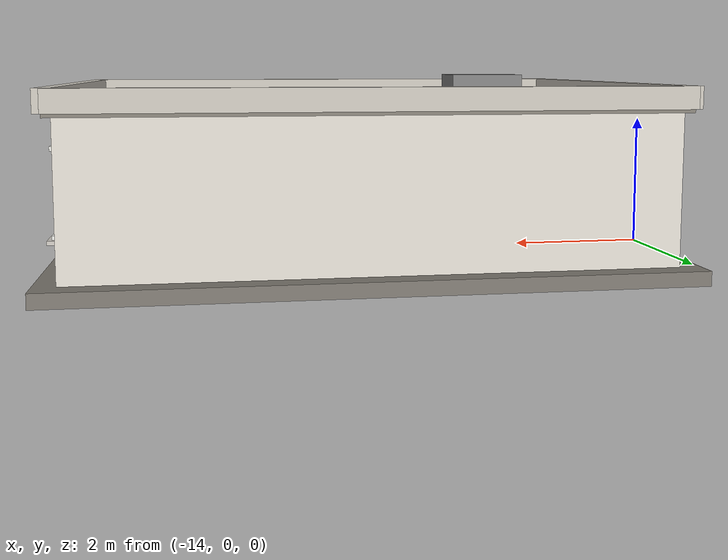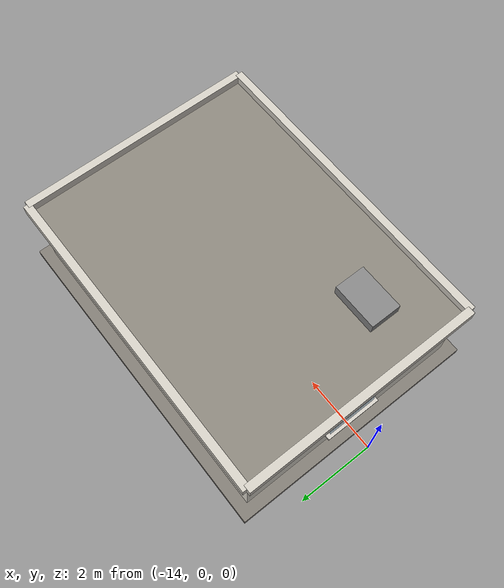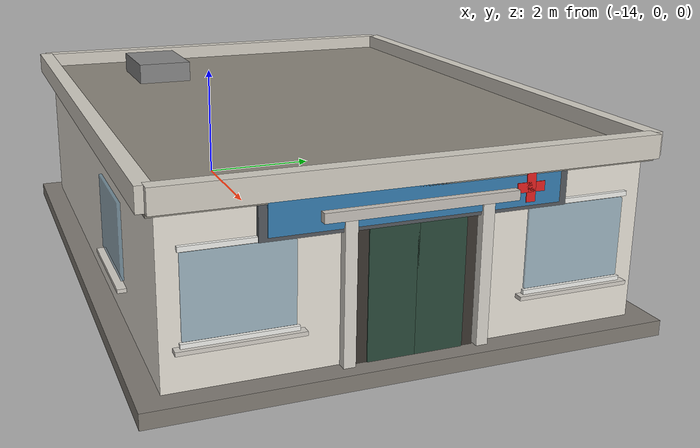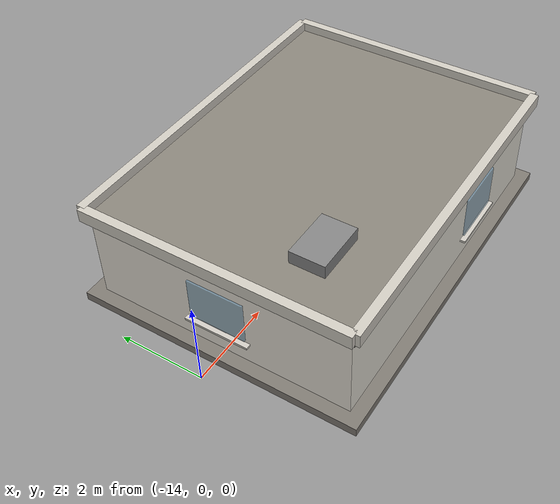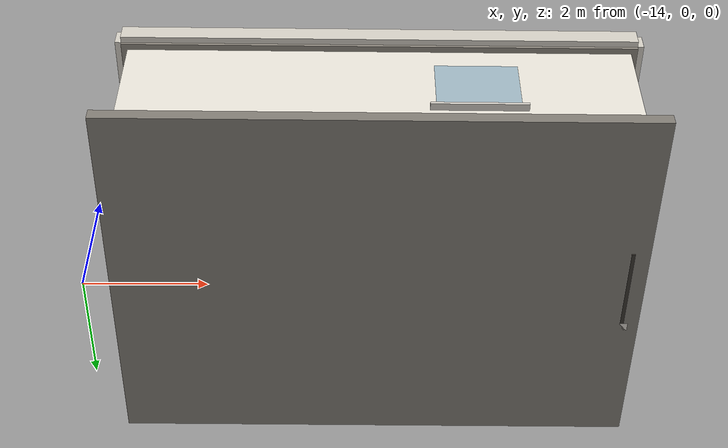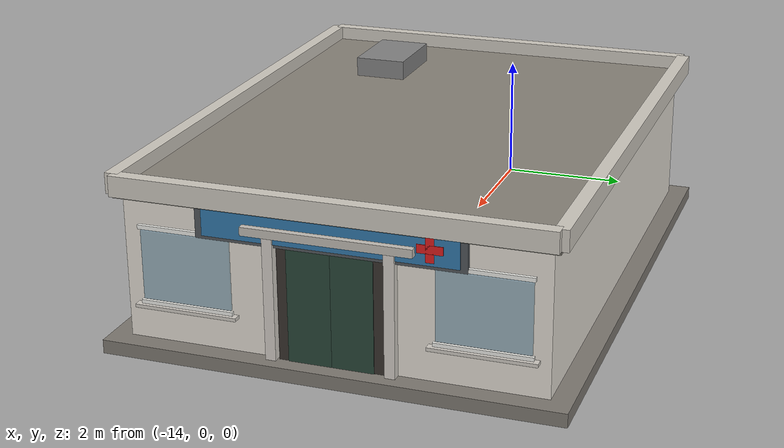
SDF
<?xml version="1.0" ?>
<sdf version="1.9">
    <model name="community_clinic">
        <static>true</static>
        <pose>-9.2829546085708738 0.030199950127691721 0 0 0 0</pose>
        <link name="clinic_link">
            <visual name="foundation_visual">
                <pose>0 0 0.1 0 0 0</pose>
                <geometry>
                    <box>
                        <size>8.6 6.6 0.2</size>
                    </box>
                </geometry>
                <material>
                    <ambient>0.45 0.43 0.40 1</ambient>
                    <diffuse>0.50 0.48 0.45 1</diffuse>
                    <specular>0.05 0.05 0.05 1</specular>
                </material>
            </visual>
            <collision name="foundation_collision">
                <pose>0 0 0.1 0 0 0</pose>
                <geometry>
                    <box>
                        <size>8.6 6.6 0.2</size>
                    </box>
                </geometry>
            </collision>
            <visual name="building_visual">
                <pose>0 0 1.2 0 0 0</pose>
                <geometry>
                    <box>
                        <size>8.0 6.0 2.2</size>
                    </box>
                </geometry>
                <material>
                    <ambient>0.88 0.86 0.82 1</ambient>
                    <diffuse>0.90 0.88 0.84 1</diffuse>
                    <specular>0.04 0.04 0.04 1</specular>
                </material>
            </visual>
            <collision name="building_collision">
                <pose>0 0 1.2 0 0 0</pose>
                <geometry>
                    <box>
                        <size>8.0 6.0 2.2</size>
                    </box>
                </geometry>
            </collision>
            <visual name="parapet_front">
                <pose>0 3.1 2.45 0 0 0</pose>
                <geometry>
                    <box>
                        <size>8.2 0.2 0.3</size>
                    </box>
                </geometry>
                <material>
                    <ambient>0.80 0.78 0.74 1</ambient>
                    <diffuse>0.82 0.80 0.76 1</diffuse>
                </material>
            </visual>
            <visual name="parapet_back">
                <pose>0 -3.1 2.45 0 0 0</pose>
                <geometry>
                    <box>
                        <size>8.2 0.2 0.3</size>
                    </box>
                </geometry>
                <material>
                    <ambient>0.80 0.78 0.74 1</ambient>
                    <diffuse>0.82 0.80 0.76 1</diffuse>
                </material>
            </visual>
            <visual name="parapet_left">
                <pose>-4.1 0 2.45 0 0 0</pose>
                <geometry>
                    <box>
                        <size>0.2 6.2 0.3</size>
                    </box>
                </geometry>
                <material>
                    <ambient>0.80 0.78 0.74 1</ambient>
                    <diffuse>0.82 0.80 0.76 1</diffuse>
                </material>
            </visual>
            <visual name="parapet_right">
                <pose>4.1 0 2.45 0 0 0</pose>
                <geometry>
                    <box>
                        <size>0.2 6.2 0.3</size>
                    </box>
                </geometry>
                <material>
                    <ambient>0.80 0.78 0.74 1</ambient>
                    <diffuse>0.82 0.80 0.76 1</diffuse>
                </material>
            </visual>
            <visual name="roof_slab">
                <pose>0 0 2.32 0 0 0</pose>
                <geometry>
                    <box>
                        <size>8.2 6.2 0.14</size>
                    </box>
                </geometry>
                <material>
                    <ambient>0.52 0.50 0.46 1</ambient>
                    <diffuse>0.54 0.52 0.48 1</diffuse>
                </material>
            </visual>
            <visual name="canopy_slab">
                <pose>3.6 0 2.05 0 0 0</pose>
                <geometry>
                    <box>
                        <size>1.2 2.4 0.12</size>
                    </box>
                </geometry>
                <material>
                    <ambient>0.75 0.73 0.70 1</ambient>
                    <diffuse>0.77 0.75 0.72 1</diffuse>
                </material>
            </visual>
            <visual name="canopy_pillar_left">
                <pose>4.05 0.85 1.05 0 0 0</pose>
                <geometry>
                    <box>
                        <size>0.15 0.15 2.1</size>
                    </box>
                </geometry>
                <material>
                    <ambient>0.82 0.80 0.77 1</ambient>
                    <diffuse>0.84 0.82 0.79 1</diffuse>
                </material>
            </visual>
            <visual name="canopy_pillar_right">
                <pose>4.05 -0.85 1.05 0 0 0</pose>
                <geometry>
                    <box>
                        <size>0.15 0.15 2.1</size>
                    </box>
                </geometry>
                <material>
                    <ambient>0.82 0.80 0.77 1</ambient>
                    <diffuse>0.84 0.82 0.79 1</diffuse>
                </material>
            </visual>
            <visual name="door_frame">
                <pose>4.02 0 1.0 0 0 0</pose>
                <geometry>
                    <box>
                        <size>0.06 1.5 2.05</size>
                    </box>
                </geometry>
                <material>
                    <ambient>0.20 0.18 0.16 1</ambient>
                    <diffuse>0.22 0.20 0.18 1</diffuse>
                </material>
            </visual>
            <visual name="door_left">
                <pose>4.04 0.30 0.95 0 0 0</pose>
                <geometry>
                    <box>
                        <size>0.05 0.62 1.90</size>
                    </box>
                </geometry>
                <material>
                    <ambient>0.14 0.26 0.20 1</ambient>
                    <diffuse>0.16 0.28 0.22 1</diffuse>
                </material>
            </visual>
            <visual name="door_right">
                <pose>4.04 -0.30 0.95 0 0 0</pose>
                <geometry>
                    <box>
                        <size>0.05 0.62 1.90</size>
                    </box>
                </geometry>
                <material>
                    <ambient>0.14 0.26 0.20 1</ambient>
                    <diffuse>0.16 0.28 0.22 1</diffuse>
                </material>
            </visual>
            <visual name="door_transom">
                <pose>4.04 0 1.97 0 0 0</pose>
                <geometry>
                    <box>
                        <size>0.04 1.30 0.20</size>
                    </box>
                </geometry>
                <material>
                    <ambient>0.55 0.70 0.75 0.65</ambient>
                    <diffuse>0.55 0.70 0.75 0.65</diffuse>
                </material>
            </visual>
            <visual name="fw1_glass">
                <pose>4.02 2.10 1.30 0 0 0</pose>
                <geometry>
                    <box>
                        <size>0.04 1.30 1.00</size>
                    </box>
                </geometry>
                <material>
                    <ambient>0.42 0.60 0.72 0.55</ambient>
                    <diffuse>0.42 0.60 0.72 0.55</diffuse>
                </material>
            </visual>
            <visual name="fw1_frame_top">
                <pose>4.04 2.10 1.86 0 0 0</pose>
                <geometry>
                    <box>
                        <size>0.05 1.36 0.06</size>
                    </box>
                </geometry>
                <material>
                    <ambient>0.92 0.92 0.90 1</ambient>
                    <diffuse>0.94 0.94 0.92 1</diffuse>
                </material>
            </visual>
            <visual name="fw1_frame_bot">
                <pose>4.04 2.10 0.76 0 0 0</pose>
                <geometry>
                    <box>
                        <size>0.05 1.36 0.06</size>
                    </box>
                </geometry>
                <material>
                    <ambient>0.92 0.92 0.90 1</ambient>
                    <diffuse>0.94 0.94 0.92 1</diffuse>
                </material>
            </visual>
            <visual name="fw1_sill">
                <pose>4.06 2.10 0.71 0 0 0</pose>
                <geometry>
                    <box>
                        <size>0.12 1.50 0.05</size>
                    </box>
                </geometry>
                <material>
                    <ambient>0.80 0.78 0.75 1</ambient>
                    <diffuse>0.82 0.80 0.77 1</diffuse>
                </material>
            </visual>
            <visual name="fw2_glass">
                <pose>4.02 -2.10 1.30 0 0 0</pose>
                <geometry>
                    <box>
                        <size>0.04 1.30 1.00</size>
                    </box>
                </geometry>
                <material>
                    <ambient>0.42 0.60 0.72 0.55</ambient>
                    <diffuse>0.42 0.60 0.72 0.55</diffuse>
                </material>
            </visual>
            <visual name="fw2_frame_top">
                <pose>4.04 -2.10 1.86 0 0 0</pose>
                <geometry>
                    <box>
                        <size>0.05 1.36 0.06</size>
                    </box>
                </geometry>
                <material>
                    <ambient>0.92 0.92 0.90 1</ambient>
                    <diffuse>0.94 0.94 0.92 1</diffuse>
                </material>
            </visual>
            <visual name="fw2_frame_bot">
                <pose>4.04 -2.10 0.76 0 0 0</pose>
                <geometry>
                    <box>
                        <size>0.05 1.36 0.06</size>
                    </box>
                </geometry>
                <material>
                    <ambient>0.92 0.92 0.90 1</ambient>
                    <diffuse>0.94 0.94 0.92 1</diffuse>
                </material>
            </visual>
            <visual name="fw2_sill">
                <pose>4.06 -2.10 0.71 0 0 0</pose>
                <geometry>
                    <box>
                        <size>0.12 1.50 0.05</size>
                    </box>
                </geometry>
                <material>
                    <ambient>0.80 0.78 0.75 1</ambient>
                    <diffuse>0.82 0.80 0.77 1</diffuse>
                </material>
            </visual>
            <visual name="bw1_glass">
                <pose>1.5 -3.03 1.30 0 0 0</pose>
                <geometry>
                    <box>
                        <size>1.30 0.04 1.00</size>
                    </box>
                </geometry>
                <material>
                    <ambient>0.42 0.60 0.72 0.55</ambient>
                    <diffuse>0.42 0.60 0.72 0.55</diffuse>
                </material>
            </visual>
            <visual name="bw1_sill">
                <pose>1.5 -3.06 0.71 0 0 0</pose>
                <geometry>
                    <box>
                        <size>1.50 0.12 0.05</size>
                    </box>
                </geometry>
                <material>
                    <ambient>0.80 0.78 0.75 1</ambient>
                    <diffuse>0.82 0.80 0.77 1</diffuse>
                </material>
            </visual>
            <visual name="lw1_glass">
                <pose>-4.03 0 1.30 0 0 0</pose>
                <geometry>
                    <box>
                        <size>0.04 1.30 1.00</size>
                    </box>
                </geometry>
                <material>
                    <ambient>0.42 0.60 0.72 0.55</ambient>
                    <diffuse>0.42 0.60 0.72 0.55</diffuse>
                </material>
            </visual>
            <visual name="lw1_sill">
                <pose>-4.06 0 0.71 0 0 0</pose>
                <geometry>
                    <box>
                        <size>0.12 1.50 0.05</size>
                    </box>
                </geometry>
                <material>
                    <ambient>0.80 0.78 0.75 1</ambient>
                    <diffuse>0.82 0.80 0.77 1</diffuse>
                </material>
            </visual>
            <visual name="sign_bracket">
                <pose>4.05 0 2.10 0 0 0</pose>
                <geometry>
                    <box>
                        <size>0.06 3.8 0.55</size>
                    </box>
                </geometry>
                <material>
                    <ambient>0.30 0.32 0.34 1</ambient>
                    <diffuse>0.32 0.34 0.36 1</diffuse>
                </material>
            </visual>
            <visual name="sign_face">
                <pose>4.08 0 2.10 0 0 0</pose>
                <geometry>
                    <box>
                        <size>0.04 3.6 0.45</size>
                    </box>
                </geometry>
                <material>
                    <ambient>0.18 0.45 0.65 1</ambient>
                    <diffuse>0.20 0.48 0.68 1</diffuse>
                </material>
            </visual>
            <visual name="cross_h">
                <pose>4.10 1.40 2.10 0 0 0</pose>
                <geometry>
                    <box>
                        <size>0.02 0.36 0.12</size>
                    </box>
                </geometry>
                <material>
                    <ambient>0.85 0.10 0.10 1</ambient>
                    <diffuse>0.88 0.12 0.12 1</diffuse>
                </material>
            </visual>
            <visual name="cross_v">
                <pose>4.10 1.40 2.10 0 0 0</pose>
                <geometry>
                    <box>
                        <size>0.02 0.12 0.36</size>
                    </box>
                </geometry>
                <material>
                    <ambient>0.85 0.10 0.10 1</ambient>
                    <diffuse>0.88 0.12 0.12 1</diffuse>
                </material>
            </visual>
            <visual name="hvac_body">
                <pose>-2.5 -1.5 2.55 0 0 0</pose>
                <geometry>
                    <box>
                        <size>1.2 0.8 0.30</size>
                    </box>
                </geometry>
                <material>
                    <ambient>0.48 0.48 0.48 1</ambient>
                    <diffuse>0.52 0.52 0.52 1</diffuse>
                </material>
            </visual>
            <inertial>
                <mass>5000</mass>
                <inertia>
                    <ixx>1000</ixx>
                    <ixy>0</ixy>
                    <ixz>0</ixz>
                    <iyy>1000</iyy>
                    <iyz>0</iyz>
                    <izz>1000</izz>
                </inertia>
            </inertial>
        </link>
    </model>
</sdf>
